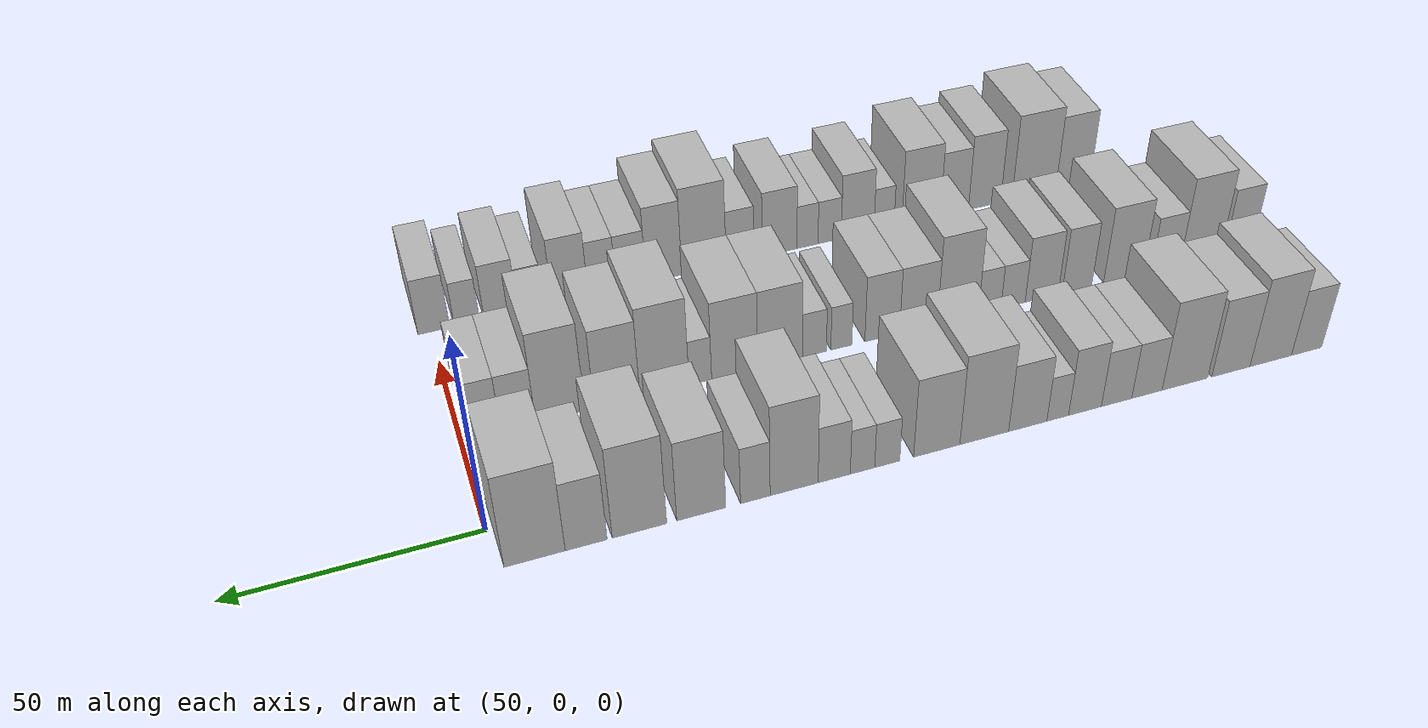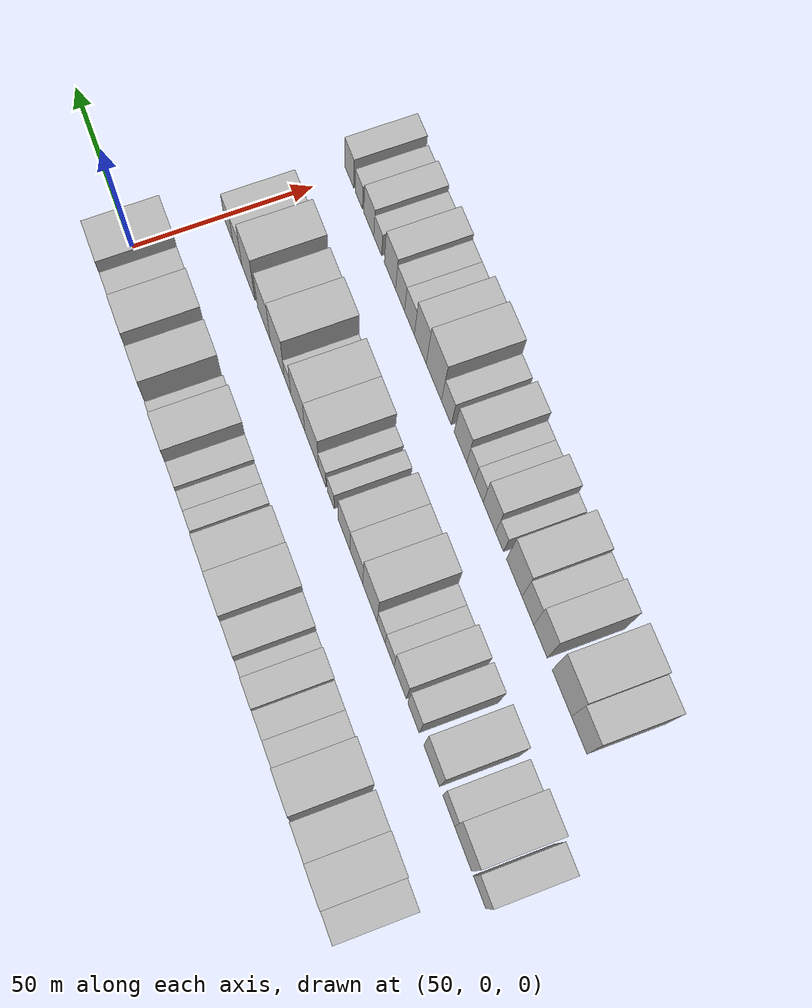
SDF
<sdf version="1.6">
 <world name="default">
  <model name="building_22">
   <static>1</static>
   <pose>50.0000 -175.5399 0 0.000000 0.000000 0.000000</pose>
   <link name="link">
    <pose>0 0 9.00 0 0 0</pose>
    <collision name="collision"><geometry><box><size>20.0000 7.5427 18.0000</size></box></geometry></collision>
    <visual name="visual">
     <cast_shadows>0</cast_shadows>
     <geometry><box><size>20.0000 7.5427 18.0000</size></box></geometry>
     <material>
      <script>
       <uri>model://HANNAS_wall/materials/scripts</uri>
       <uri>model://HANNAS_wall/materials/textures</uri>
       <name>vrc/HANNAS_wall</name>
      </script>
     </material>
    </visual>
   </link>
  </model>
  <model name="building_23">
   <static>1</static>
   <pose>50.0000 -166.6591 0 0.000000 0.000000 0.000000</pose>
   <link name="link">
    <pose>0 0 12.00 0 0 0</pose>
    <collision name="collision"><geometry><box><size>20.0000 10.2189 24.0000</size></box></geometry></collision>
    <visual name="visual">
     <cast_shadows>0</cast_shadows>
     <geometry><box><size>20.0000 10.2189 24.0000</size></box></geometry>
     <material>
      <script>
       <uri>model://HANNAS_wall/materials/scripts</uri>
       <uri>model://HANNAS_wall/materials/textures</uri>
       <name>vrc/HANNAS_wall</name>
      </script>
     </material>
    </visual>
   </link>
  </model>
  <model name="building_24">
   <static>1</static>
   <pose>50.0000 -156.9002 0 0.000000 0.000000 0.000000</pose>
   <link name="link">
    <pose>0 0 10.50 0 0 0</pose>
    <collision name="collision"><geometry><box><size>20.0000 9.2989 21.0000</size></box></geometry></collision>
    <visual name="visual">
     <cast_shadows>0</cast_shadows>
     <geometry><box><size>20.0000 9.2989 21.0000</size></box></geometry>
     <material>
      <script>
       <uri>model://HANNAS_wall/materials/scripts</uri>
       <uri>model://HANNAS_wall/materials/textures</uri>
       <name>vrc/HANNAS_wall</name>
      </script>
     </material>
    </visual>
   </link>
  </model>
  <model name="building_25">
   <static>1</static>
   <pose>50.0000 -145.7998 0 0.000000 0.000000 0.000000</pose>
   <link name="link">
    <pose>0 0 12.00 0 0 0</pose>
    <collision name="collision"><geometry><box><size>20.0000 10.9017 24.0000</size></box></geometry></collision>
    <visual name="visual">
     <cast_shadows>0</cast_shadows>
     <geometry><box><size>20.0000 10.9017 24.0000</size></box></geometry>
     <material>
      <script>
       <uri>model://HANNAS_wall/materials/scripts</uri>
       <uri>model://HANNAS_wall/materials/textures</uri>
       <name>vrc/HANNAS_wall</name>
      </script>
     </material>
    </visual>
   </link>
  </model>
  <model name="building_26">
   <static>1</static>
   <pose>50.0000 -136.7652 0 0.000000 0.000000 0.000000</pose>
   <link name="link">
    <pose>0 0 7.50 0 0 0</pose>
    <collision name="collision"><geometry><box><size>20.0000 7.1675 15.0000</size></box></geometry></collision>
    <visual name="visual">
     <cast_shadows>0</cast_shadows>
     <geometry><box><size>20.0000 7.1675 15.0000</size></box></geometry>
     <material>
      <script>
       <uri>model://HANNAS_wall/materials/scripts</uri>
       <uri>model://HANNAS_wall/materials/textures</uri>
       <name>vrc/HANNAS_wall</name>
      </script>
     </material>
    </visual>
   </link>
  </model>
  <model name="building_27">
   <static>1</static>
   <pose>50.0000 -129.6550 0 0.000000 0.000000 0.000000</pose>
   <link name="link">
    <pose>0 0 7.50 0 0 0</pose>
    <collision name="collision"><geometry><box><size>20.0000 7.0529 15.0000</size></box></geometry></collision>
    <visual name="visual">
     <cast_shadows>0</cast_shadows>
     <geometry><box><size>20.0000 7.0529 15.0000</size></box></geometry>
     <material>
      <script>
       <uri>model://HANNAS_wall/materials/scripts</uri>
       <uri>model://HANNAS_wall/materials/textures</uri>
       <name>vrc/HANNAS_wall</name>
      </script>
     </material>
    </visual>
   </link>
  </model>
  <model name="building_28">
   <static>1</static>
   <pose>50.0000 -122.3375 0 0.000000 0.000000 0.000000</pose>
   <link name="link">
    <pose>0 0 9.00 0 0 0</pose>
    <collision name="collision"><geometry><box><size>20.0000 7.5823 18.0000</size></box></geometry></collision>
    <visual name="visual">
     <cast_shadows>0</cast_shadows>
     <geometry><box><size>20.0000 7.5823 18.0000</size></box></geometry>
     <material>
      <script>
       <uri>model://HANNAS_wall/materials/scripts</uri>
       <uri>model://HANNAS_wall/materials/textures</uri>
       <name>vrc/HANNAS_wall</name>
      </script>
     </material>
    </visual>
   </link>
  </model>
  <model name="building_29">
   <static>1</static>
   <pose>50.0000 -116.0699 0 0.000000 0.000000 0.000000</pose>
   <link name="link">
    <pose>0 0 6.00 0 0 0</pose>
    <collision name="collision"><geometry><box><size>20.0000 4.9528 12.0000</size></box></geometry></collision>
    <visual name="visual">
     <cast_shadows>0</cast_shadows>
     <geometry><box><size>20.0000 4.9528 12.0000</size></box></geometry>
     <material>
      <script>
       <uri>model://HANNAS_wall/materials/scripts</uri>
       <uri>model://HANNAS_wall/materials/textures</uri>
       <name>vrc/HANNAS_wall</name>
      </script>
     </material>
    </visual>
   </link>
  </model>
  <model name="building_30">
   <static>1</static>
   <pose>50.0000 -109.2747 0 0.000000 0.000000 0.000000</pose>
   <link name="link">
    <pose>0 0 9.00 0 0 0</pose>
    <collision name="collision"><geometry><box><size>20.0000 8.6376 18.0000</size></box></geometry></collision>
    <visual name="visual">
     <cast_shadows>0</cast_shadows>
     <geometry><box><size>20.0000 8.6376 18.0000</size></box></geometry>
     <material>
      <script>
       <uri>model://HANNAS_wall/materials/scripts</uri>
       <uri>model://HANNAS_wall/materials/textures</uri>
       <name>vrc/HANNAS_wall</name>
      </script>
     </material>
    </visual>
   </link>
  </model>
  <model name="building_31">
   <static>1</static>
   <pose>50.0000 -99.5442 0 0.000000 0.000000 0.000000</pose>
   <link name="link">
    <pose>0 0 12.00 0 0 0</pose>
    <collision name="collision"><geometry><box><size>20.0000 10.8232 24.0000</size></box></geometry></collision>
    <visual name="visual">
     <cast_shadows>0</cast_shadows>
     <geometry><box><size>20.0000 10.8232 24.0000</size></box></geometry>
     <material>
      <script>
       <uri>model://HANNAS_wall/materials/scripts</uri>
       <uri>model://HANNAS_wall/materials/textures</uri>
       <name>vrc/HANNAS_wall</name>
      </script>
     </material>
    </visual>
   </link>
  </model>
  <model name="building_32">
   <static>1</static>
   <pose>50.0000 -89.0748 0 0.000000 0.000000 0.000000</pose>
   <link name="link">
    <pose>0 0 10.50 0 0 0</pose>
    <collision name="collision"><geometry><box><size>20.0000 10.1156 21.0000</size></box></geometry></collision>
    <visual name="visual">
     <cast_shadows>0</cast_shadows>
     <geometry><box><size>20.0000 10.1156 21.0000</size></box></geometry>
     <material>
      <script>
       <uri>model://HANNAS_wall/materials/scripts</uri>
       <uri>model://HANNAS_wall/materials/textures</uri>
       <name>vrc/HANNAS_wall</name>
      </script>
     </material>
    </visual>
   </link>
  </model>
  <model name="building_33">
   <static>1</static>
   <pose>50.0000 -78.3237 0 0.000000 0.000000 0.000000</pose>
   <link name="link">
    <pose>0 0 6.00 0 0 0</pose>
    <collision name="collision"><geometry><box><size>20.0000 5.3867 12.0000</size></box></geometry></collision>
    <visual name="visual">
     <cast_shadows>0</cast_shadows>
     <geometry><box><size>20.0000 5.3867 12.0000</size></box></geometry>
     <material>
      <script>
       <uri>model://HANNAS_wall/materials/scripts</uri>
       <uri>model://HANNAS_wall/materials/textures</uri>
       <name>vrc/HANNAS_wall</name>
      </script>
     </material>
    </visual>
   </link>
  </model>
  <model name="building_34">
   <static>1</static>
   <pose>50.0000 -73.0354 0 0.000000 0.000000 0.000000</pose>
   <link name="link">
    <pose>0 0 6.00 0 0 0</pose>
    <collision name="collision"><geometry><box><size>20.0000 5.1898 12.0000</size></box></geometry></collision>
    <visual name="visual">
     <cast_shadows>0</cast_shadows>
     <geometry><box><size>20.0000 5.1898 12.0000</size></box></geometry>
     <material>
      <script>
       <uri>model://HANNAS_wall/materials/scripts</uri>
       <uri>model://HANNAS_wall/materials/textures</uri>
       <name>vrc/HANNAS_wall</name>
      </script>
     </material>
    </visual>
   </link>
  </model>
  <model name="building_35">
   <static>1</static>
   <pose>50.0000 -67.0628 0 0.000000 0.000000 0.000000</pose>
   <link name="link">
    <pose>0 0 7.50 0 0 0</pose>
    <collision name="collision"><geometry><box><size>20.0000 6.7553 15.0000</size></box></geometry></collision>
    <visual name="visual">
     <cast_shadows>0</cast_shadows>
     <geometry><box><size>20.0000 6.7553 15.0000</size></box></geometry>
     <material>
      <script>
       <uri>model://HANNAS_wall/materials/scripts</uri>
       <uri>model://HANNAS_wall/materials/textures</uri>
       <name>vrc/HANNAS_wall</name>
      </script>
     </material>
    </visual>
   </link>
  </model>
  <model name="building_36">
   <static>1</static>
   <pose>50.0000 -58.6973 0 0.000000 0.000000 0.000000</pose>
   <link name="link">
    <pose>0 0 12.00 0 0 0</pose>
    <collision name="collision"><geometry><box><size>20.0000 9.9757 24.0000</size></box></geometry></collision>
    <visual name="visual">
     <cast_shadows>0</cast_shadows>
     <geometry><box><size>20.0000 9.9757 24.0000</size></box></geometry>
     <material>
      <script>
       <uri>model://HANNAS_wall/materials/scripts</uri>
       <uri>model://HANNAS_wall/materials/textures</uri>
       <name>vrc/HANNAS_wall</name>
      </script>
     </material>
    </visual>
   </link>
  </model>
  <model name="building_37">
   <static>1</static>
   <pose>50.0000 -50.6747 0 0.000000 0.000000 0.000000</pose>
   <link name="link">
    <pose>0 0 7.50 0 0 0</pose>
    <collision name="collision"><geometry><box><size>20.0000 6.0696 15.0000</size></box></geometry></collision>
    <visual name="visual">
     <cast_shadows>0</cast_shadows>
     <geometry><box><size>20.0000 6.0696 15.0000</size></box></geometry>
     <material>
      <script>
       <uri>model://HANNAS_wall/materials/scripts</uri>
       <uri>model://HANNAS_wall/materials/textures</uri>
       <name>vrc/HANNAS_wall</name>
      </script>
     </material>
    </visual>
   </link>
  </model>
  <model name="building_38">
   <static>1</static>
   <pose>50.0000 -39.7006 0 0.000000 0.000000 0.000000</pose>
   <link name="link">
    <pose>0 0 10.50 0 0 0</pose>
    <collision name="collision"><geometry><box><size>20.0000 9.8786 21.0000</size></box></geometry></collision>
    <visual name="visual">
     <cast_shadows>0</cast_shadows>
     <geometry><box><size>20.0000 9.8786 21.0000</size></box></geometry>
     <material>
      <script>
       <uri>model://HANNAS_wall/materials/scripts</uri>
       <uri>model://HANNAS_wall/materials/textures</uri>
       <name>vrc/HANNAS_wall</name>
      </script>
     </material>
    </visual>
   </link>
  </model>
  <model name="building_39">
   <static>1</static>
   <pose>50.0000 -27.3961 0 0.000000 0.000000 0.000000</pose>
   <link name="link">
    <pose>0 0 12.00 0 0 0</pose>
    <collision name="collision"><geometry><box><size>20.0000 10.7304 24.0000</size></box></geometry></collision>
    <visual name="visual">
     <cast_shadows>0</cast_shadows>
     <geometry><box><size>20.0000 10.7304 24.0000</size></box></geometry>
     <material>
      <script>
       <uri>model://HANNAS_wall/materials/scripts</uri>
       <uri>model://HANNAS_wall/materials/textures</uri>
       <name>vrc/HANNAS_wall</name>
      </script>
     </material>
    </visual>
   </link>
  </model>
  <model name="building_40">
   <static>1</static>
   <pose>50.0000 -16.9839 0 0.000000 0.000000 0.000000</pose>
   <link name="link">
    <pose>0 0 9.00 0 0 0</pose>
    <collision name="collision"><geometry><box><size>20.0000 8.0940 18.0000</size></box></geometry></collision>
    <visual name="visual">
     <cast_shadows>0</cast_shadows>
     <geometry><box><size>20.0000 8.0940 18.0000</size></box></geometry>
     <material>
      <script>
       <uri>model://HANNAS_wall/materials/scripts</uri>
       <uri>model://HANNAS_wall/materials/textures</uri>
       <name>vrc/HANNAS_wall</name>
      </script>
     </material>
    </visual>
   </link>
  </model>
  <model name="building_41">
   <static>1</static>
   <pose>50.0000 -7.0930 0 0.000000 0.000000 0.000000</pose>
   <link name="link">
    <pose>0 0 12.00 0 0 0</pose>
    <collision name="collision"><geometry><box><size>20.0000 11.6879 24.0000</size></box></geometry></collision>
    <visual name="visual">
     <cast_shadows>0</cast_shadows>
     <geometry><box><size>20.0000 11.6879 24.0000</size></box></geometry>
     <material>
      <script>
       <uri>model://HANNAS_wall/materials/scripts</uri>
       <uri>model://HANNAS_wall/materials/textures</uri>
       <name>vrc/HANNAS_wall</name>
      </script>
     </material>
    </visual>
   </link>
  </model>
  <model name="building_104">
   <static>1</static>
   <pose>85.0000 -180.5309 0 0.000000 0.000000 0.000000</pose>
   <link name="link">
    <pose>0 0 9.00 0 0 0</pose>
    <collision name="collision"><geometry><box><size>20.0000 7.5802 18.0000</size></box></geometry></collision>
    <visual name="visual">
     <cast_shadows>0</cast_shadows>
     <geometry><box><size>20.0000 7.5802 18.0000</size></box></geometry>
     <material>
      <script>
       <uri>model://HANNAS_wall/materials/scripts</uri>
       <uri>model://HANNAS_wall/materials/textures</uri>
       <name>vrc/HANNAS_wall</name>
      </script>
     </material>
    </visual>
   </link>
  </model>
  <model name="building_105">
   <static>1</static>
   <pose>85.0000 -170.4434 0 0.000000 0.000000 0.000000</pose>
   <link name="link">
    <pose>0 0 12.00 0 0 0</pose>
    <collision name="collision"><geometry><box><size>20.0000 10.5948 24.0000</size></box></geometry></collision>
    <visual name="visual">
     <cast_shadows>0</cast_shadows>
     <geometry><box><size>20.0000 10.5948 24.0000</size></box></geometry>
     <material>
      <script>
       <uri>model://HANNAS_wall/materials/scripts</uri>
       <uri>model://HANNAS_wall/materials/textures</uri>
       <name>vrc/HANNAS_wall</name>
      </script>
     </material>
    </visual>
   </link>
  </model>
  <model name="building_106">
   <static>1</static>
   <pose>85.0000 -161.4108 0 0.000000 0.000000 0.000000</pose>
   <link name="link">
    <pose>0 0 7.50 0 0 0</pose>
    <collision name="collision"><geometry><box><size>20.0000 7.4703 15.0000</size></box></geometry></collision>
    <visual name="visual">
     <cast_shadows>0</cast_shadows>
     <geometry><box><size>20.0000 7.4703 15.0000</size></box></geometry>
     <material>
      <script>
       <uri>model://HANNAS_wall/materials/scripts</uri>
       <uri>model://HANNAS_wall/materials/textures</uri>
       <name>vrc/HANNAS_wall</name>
      </script>
     </material>
    </visual>
   </link>
  </model>
  <model name="building_107">
   <static>1</static>
   <pose>85.0000 -150.6119 0 0.000000 0.000000 0.000000</pose>
   <link name="link">
    <pose>0 0 10.50 0 0 0</pose>
    <collision name="collision"><geometry><box><size>20.0000 10.1276 21.0000</size></box></geometry></collision>
    <visual name="visual">
     <cast_shadows>0</cast_shadows>
     <geometry><box><size>20.0000 10.1276 21.0000</size></box></geometry>
     <material>
      <script>
       <uri>model://HANNAS_wall/materials/scripts</uri>
       <uri>model://HANNAS_wall/materials/textures</uri>
       <name>vrc/HANNAS_wall</name>
      </script>
     </material>
    </visual>
   </link>
  </model>
  <model name="building_108">
   <static>1</static>
   <pose>85.0000 -138.8390 0 0.000000 0.000000 0.000000</pose>
   <link name="link">
    <pose>0 0 9.00 0 0 0</pose>
    <collision name="collision"><geometry><box><size>20.0000 7.4181 18.0000</size></box></geometry></collision>
    <visual name="visual">
     <cast_shadows>0</cast_shadows>
     <geometry><box><size>20.0000 7.4181 18.0000</size></box></geometry>
     <material>
      <script>
       <uri>model://HANNAS_wall/materials/scripts</uri>
       <uri>model://HANNAS_wall/materials/textures</uri>
       <name>vrc/HANNAS_wall</name>
      </script>
     </material>
    </visual>
   </link>
  </model>
  <model name="building_109">
   <static>1</static>
   <pose>85.0000 -130.0337 0 0.000000 0.000000 0.000000</pose>
   <link name="link">
    <pose>0 0 9.00 0 0 0</pose>
    <collision name="collision"><geometry><box><size>20.0000 8.1925 18.0000</size></box></geometry></collision>
    <visual name="visual">
     <cast_shadows>0</cast_shadows>
     <geometry><box><size>20.0000 8.1925 18.0000</size></box></geometry>
     <material>
      <script>
       <uri>model://HANNAS_wall/materials/scripts</uri>
       <uri>model://HANNAS_wall/materials/textures</uri>
       <name>vrc/HANNAS_wall</name>
      </script>
     </material>
    </visual>
   </link>
  </model>
  <model name="building_110">
   <static>1</static>
   <pose>85.0000 -122.9651 0 0.000000 0.000000 0.000000</pose>
   <link name="link">
    <pose>0 0 6.00 0 0 0</pose>
    <collision name="collision"><geometry><box><size>20.0000 5.9447 12.0000</size></box></geometry></collision>
    <visual name="visual">
     <cast_shadows>0</cast_shadows>
     <geometry><box><size>20.0000 5.9447 12.0000</size></box></geometry>
     <material>
      <script>
       <uri>model://HANNAS_wall/materials/scripts</uri>
       <uri>model://HANNAS_wall/materials/textures</uri>
       <name>vrc/HANNAS_wall</name>
      </script>
     </material>
    </visual>
   </link>
  </model>
  <model name="building_111">
   <static>1</static>
   <pose>85.0000 -117.2494 0 0.000000 0.000000 0.000000</pose>
   <link name="link">
    <pose>0 0 6.00 0 0 0</pose>
    <collision name="collision"><geometry><box><size>20.0000 5.4867 12.0000</size></box></geometry></collision>
    <visual name="visual">
     <cast_shadows>0</cast_shadows>
     <geometry><box><size>20.0000 5.4867 12.0000</size></box></geometry>
     <material>
      <script>
       <uri>model://HANNAS_wall/materials/scripts</uri>
       <uri>model://HANNAS_wall/materials/textures</uri>
       <name>vrc/HANNAS_wall</name>
      </script>
     </material>
    </visual>
   </link>
  </model>
  <model name="building_112">
   <static>1</static>
   <pose>85.0000 -109.5679 0 0.000000 0.000000 0.000000</pose>
   <link name="link">
    <pose>0 0 12.00 0 0 0</pose>
    <collision name="collision"><geometry><box><size>20.0000 9.8763 24.0000</size></box></geometry></collision>
    <visual name="visual">
     <cast_shadows>0</cast_shadows>
     <geometry><box><size>20.0000 9.8763 24.0000</size></box></geometry>
     <material>
      <script>
       <uri>model://HANNAS_wall/materials/scripts</uri>
       <uri>model://HANNAS_wall/materials/textures</uri>
       <name>vrc/HANNAS_wall</name>
      </script>
     </material>
    </visual>
   </link>
  </model>
  <model name="building_113">
   <static>1</static>
   <pose>85.0000 -100.1705 0 0.000000 0.000000 0.000000</pose>
   <link name="link">
    <pose>0 0 9.00 0 0 0</pose>
    <collision name="collision"><geometry><box><size>20.0000 8.9186 18.0000</size></box></geometry></collision>
    <visual name="visual">
     <cast_shadows>0</cast_shadows>
     <geometry><box><size>20.0000 8.9186 18.0000</size></box></geometry>
     <material>
      <script>
       <uri>model://HANNAS_wall/materials/scripts</uri>
       <uri>model://HANNAS_wall/materials/textures</uri>
       <name>vrc/HANNAS_wall</name>
      </script>
     </material>
    </visual>
   </link>
  </model>
  <model name="building_114">
   <static>1</static>
   <pose>85.0000 -91.6580 0 0.000000 0.000000 0.000000</pose>
   <link name="link">
    <pose>0 0 9.00 0 0 0</pose>
    <collision name="collision"><geometry><box><size>20.0000 8.1062 18.0000</size></box></geometry></collision>
    <visual name="visual">
     <cast_shadows>0</cast_shadows>
     <geometry><box><size>20.0000 8.1062 18.0000</size></box></geometry>
     <material>
      <script>
       <uri>model://HANNAS_wall/materials/scripts</uri>
       <uri>model://HANNAS_wall/materials/textures</uri>
       <name>vrc/HANNAS_wall</name>
      </script>
     </material>
    </visual>
   </link>
  </model>
  <model name="building_115">
   <static>1</static>
   <pose>85.0000 -82.1719 0 0.000000 0.000000 0.000000</pose>
   <link name="link">
    <pose>0 0 6.00 0 0 0</pose>
    <collision name="collision"><geometry><box><size>20.0000 4.8661 12.0000</size></box></geometry></collision>
    <visual name="visual">
     <cast_shadows>0</cast_shadows>
     <geometry><box><size>20.0000 4.8661 12.0000</size></box></geometry>
     <material>
      <script>
       <uri>model://HANNAS_wall/materials/scripts</uri>
       <uri>model://HANNAS_wall/materials/textures</uri>
       <name>vrc/HANNAS_wall</name>
      </script>
     </material>
    </visual>
   </link>
  </model>
  <model name="building_116">
   <static>1</static>
   <pose>85.0000 -76.0202 0 0.000000 0.000000 0.000000</pose>
   <link name="link">
    <pose>0 0 6.00 0 0 0</pose>
    <collision name="collision"><geometry><box><size>20.0000 5.4373 12.0000</size></box></geometry></collision>
    <visual name="visual">
     <cast_shadows>0</cast_shadows>
     <geometry><box><size>20.0000 5.4373 12.0000</size></box></geometry>
     <material>
      <script>
       <uri>model://HANNAS_wall/materials/scripts</uri>
       <uri>model://HANNAS_wall/materials/textures</uri>
       <name>vrc/HANNAS_wall</name>
      </script>
     </material>
    </visual>
   </link>
  </model>
  <model name="building_117">
   <static>1</static>
   <pose>85.0000 -68.2478 0 0.000000 0.000000 0.000000</pose>
   <link name="link">
    <pose>0 0 10.50 0 0 0</pose>
    <collision name="collision"><geometry><box><size>20.0000 10.1073 21.0000</size></box></geometry></collision>
    <visual name="visual">
     <cast_shadows>0</cast_shadows>
     <geometry><box><size>20.0000 10.1073 21.0000</size></box></geometry>
     <material>
      <script>
       <uri>model://HANNAS_wall/materials/scripts</uri>
       <uri>model://HANNAS_wall/materials/textures</uri>
       <name>vrc/HANNAS_wall</name>
      </script>
     </material>
    </visual>
   </link>
  </model>
  <model name="building_118">
   <static>1</static>
   <pose>85.0000 -58.0601 0 0.000000 0.000000 0.000000</pose>
   <link name="link">
    <pose>0 0 10.50 0 0 0</pose>
    <collision name="collision"><geometry><box><size>20.0000 10.2682 21.0000</size></box></geometry></collision>
    <visual name="visual">
     <cast_shadows>0</cast_shadows>
     <geometry><box><size>20.0000 10.2682 21.0000</size></box></geometry>
     <material>
      <script>
       <uri>model://HANNAS_wall/materials/scripts</uri>
       <uri>model://HANNAS_wall/materials/textures</uri>
       <name>vrc/HANNAS_wall</name>
      </script>
     </material>
    </visual>
   </link>
  </model>
  <model name="building_119">
   <static>1</static>
   <pose>85.0000 -50.4531 0 0.000000 0.000000 0.000000</pose>
   <link name="link">
    <pose>0 0 6.00 0 0 0</pose>
    <collision name="collision"><geometry><box><size>20.0000 4.9458 12.0000</size></box></geometry></collision>
    <visual name="visual">
     <cast_shadows>0</cast_shadows>
     <geometry><box><size>20.0000 4.9458 12.0000</size></box></geometry>
     <material>
      <script>
       <uri>model://HANNAS_wall/materials/scripts</uri>
       <uri>model://HANNAS_wall/materials/textures</uri>
       <name>vrc/HANNAS_wall</name>
      </script>
     </material>
    </visual>
   </link>
  </model>
  <model name="building_120">
   <static>1</static>
   <pose>85.0000 -42.6387 0 0.000000 0.000000 0.000000</pose>
   <link name="link">
    <pose>0 0 12.00 0 0 0</pose>
    <collision name="collision"><geometry><box><size>20.0000 10.6828 24.0000</size></box></geometry></collision>
    <visual name="visual">
     <cast_shadows>0</cast_shadows>
     <geometry><box><size>20.0000 10.6828 24.0000</size></box></geometry>
     <material>
      <script>
       <uri>model://HANNAS_wall/materials/scripts</uri>
       <uri>model://HANNAS_wall/materials/textures</uri>
       <name>vrc/HANNAS_wall</name>
      </script>
     </material>
    </visual>
   </link>
  </model>
  <model name="building_121">
   <static>1</static>
   <pose>85.0000 -32.4315 0 0.000000 0.000000 0.000000</pose>
   <link name="link">
    <pose>0 0 10.50 0 0 0</pose>
    <collision name="collision"><geometry><box><size>20.0000 9.7316 21.0000</size></box></geometry></collision>
    <visual name="visual">
     <cast_shadows>0</cast_shadows>
     <geometry><box><size>20.0000 9.7316 21.0000</size></box></geometry>
     <material>
      <script>
       <uri>model://HANNAS_wall/materials/scripts</uri>
       <uri>model://HANNAS_wall/materials/textures</uri>
       <name>vrc/HANNAS_wall</name>
      </script>
     </material>
    </visual>
   </link>
  </model>
  <model name="building_122">
   <static>1</static>
   <pose>85.0000 -20.4180 0 0.000000 0.000000 0.000000</pose>
   <link name="link">
    <pose>0 0 12.00 0 0 0</pose>
    <collision name="collision"><geometry><box><size>20.0000 10.2954 24.0000</size></box></geometry></collision>
    <visual name="visual">
     <cast_shadows>0</cast_shadows>
     <geometry><box><size>20.0000 10.2954 24.0000</size></box></geometry>
     <material>
      <script>
       <uri>model://HANNAS_wall/materials/scripts</uri>
       <uri>model://HANNAS_wall/materials/textures</uri>
       <name>vrc/HANNAS_wall</name>
      </script>
     </material>
    </visual>
   </link>
  </model>
  <model name="building_123">
   <static>1</static>
   <pose>85.0000 -11.6659 0 0.000000 0.000000 0.000000</pose>
   <link name="link">
    <pose>0 0 7.50 0 0 0</pose>
    <collision name="collision"><geometry><box><size>20.0000 7.2089 15.0000</size></box></geometry></collision>
    <visual name="visual">
     <cast_shadows>0</cast_shadows>
     <geometry><box><size>20.0000 7.2089 15.0000</size></box></geometry>
     <material>
      <script>
       <uri>model://HANNAS_wall/materials/scripts</uri>
       <uri>model://HANNAS_wall/materials/textures</uri>
       <name>vrc/HANNAS_wall</name>
      </script>
     </material>
    </visual>
   </link>
  </model>
  <model name="building_124">
   <static>1</static>
   <pose>85.0000 -4.7768 0 0.000000 0.000000 0.000000</pose>
   <link name="link">
    <pose>0 0 7.50 0 0 0</pose>
    <collision name="collision"><geometry><box><size>20.0000 6.5692 15.0000</size></box></geometry></collision>
    <visual name="visual">
     <cast_shadows>0</cast_shadows>
     <geometry><box><size>20.0000 6.5692 15.0000</size></box></geometry>
     <material>
      <script>
       <uri>model://HANNAS_wall/materials/scripts</uri>
       <uri>model://HANNAS_wall/materials/textures</uri>
       <name>vrc/HANNAS_wall</name>
      </script>
     </material>
    </visual>
   </link>
  </model>
  <model name="building_186">
   <static>1</static>
   <pose>120.0000 -156.0655 0 0.000000 0.000000 0.000000</pose>
   <link name="link">
    <pose>0 0 10.50 0 0 0</pose>
    <collision name="collision"><geometry><box><size>20.0000 9.2628 21.0000</size></box></geometry></collision>
    <visual name="visual">
     <cast_shadows>0</cast_shadows>
     <geometry><box><size>20.0000 9.2628 21.0000</size></box></geometry>
     <material>
      <script>
       <uri>model://HANNAS_wall/materials/scripts</uri>
       <uri>model://HANNAS_wall/materials/textures</uri>
       <name>vrc/HANNAS_wall</name>
      </script>
     </material>
    </visual>
   </link>
  </model>
  <model name="building_187">
   <static>1</static>
   <pose>120.0000 -145.5652 0 0.000000 0.000000 0.000000</pose>
   <link name="link">
    <pose>0 0 12.00 0 0 0</pose>
    <collision name="collision"><geometry><box><size>20.0000 11.7379 24.0000</size></box></geometry></collision>
    <visual name="visual">
     <cast_shadows>0</cast_shadows>
     <geometry><box><size>20.0000 11.7379 24.0000</size></box></geometry>
     <material>
      <script>
       <uri>model://HANNAS_wall/materials/scripts</uri>
       <uri>model://HANNAS_wall/materials/textures</uri>
       <name>vrc/HANNAS_wall</name>
      </script>
     </material>
    </visual>
   </link>
  </model>
  <model name="building_188">
   <static>1</static>
   <pose>120.0000 -132.4671 0 0.000000 0.000000 0.000000</pose>
   <link name="link">
    <pose>0 0 10.50 0 0 0</pose>
    <collision name="collision"><geometry><box><size>20.0000 8.4583 21.0000</size></box></geometry></collision>
    <visual name="visual">
     <cast_shadows>0</cast_shadows>
     <geometry><box><size>20.0000 8.4583 21.0000</size></box></geometry>
     <material>
      <script>
       <uri>model://HANNAS_wall/materials/scripts</uri>
       <uri>model://HANNAS_wall/materials/textures</uri>
       <name>vrc/HANNAS_wall</name>
      </script>
     </material>
    </visual>
   </link>
  </model>
  <model name="building_189">
   <static>1</static>
   <pose>120.0000 -124.5732 0 0.000000 0.000000 0.000000</pose>
   <link name="link">
    <pose>0 0 9.00 0 0 0</pose>
    <collision name="collision"><geometry><box><size>20.0000 7.3294 18.0000</size></box></geometry></collision>
    <visual name="visual">
     <cast_shadows>0</cast_shadows>
     <geometry><box><size>20.0000 7.3294 18.0000</size></box></geometry>
     <material>
      <script>
       <uri>model://HANNAS_wall/materials/scripts</uri>
       <uri>model://HANNAS_wall/materials/textures</uri>
       <name>vrc/HANNAS_wall</name>
      </script>
     </material>
    </visual>
   </link>
  </model>
  <model name="building_190">
   <static>1</static>
   <pose>120.0000 -115.9672 0 0.000000 0.000000 0.000000</pose>
   <link name="link">
    <pose>0 0 10.50 0 0 0</pose>
    <collision name="collision"><geometry><box><size>20.0000 9.8826 21.0000</size></box></geometry></collision>
    <visual name="visual">
     <cast_shadows>0</cast_shadows>
     <geometry><box><size>20.0000 9.8826 21.0000</size></box></geometry>
     <material>
      <script>
       <uri>model://HANNAS_wall/materials/scripts</uri>
       <uri>model://HANNAS_wall/materials/textures</uri>
       <name>vrc/HANNAS_wall</name>
      </script>
     </material>
    </visual>
   </link>
  </model>
  <model name="building_191">
   <static>1</static>
   <pose>120.0000 -106.4853 0 0.000000 0.000000 0.000000</pose>
   <link name="link">
    <pose>0 0 6.00 0 0 0</pose>
    <collision name="collision"><geometry><box><size>20.0000 5.0813 12.0000</size></box></geometry></collision>
    <visual name="visual">
     <cast_shadows>0</cast_shadows>
     <geometry><box><size>20.0000 5.0813 12.0000</size></box></geometry>
     <material>
      <script>
       <uri>model://HANNAS_wall/materials/scripts</uri>
       <uri>model://HANNAS_wall/materials/textures</uri>
       <name>vrc/HANNAS_wall</name>
      </script>
     </material>
    </visual>
   </link>
  </model>
  <model name="building_192">
   <static>1</static>
   <pose>120.0000 -99.8449 0 0.000000 0.000000 0.000000</pose>
   <link name="link">
    <pose>0 0 9.00 0 0 0</pose>
    <collision name="collision"><geometry><box><size>20.0000 8.1994 18.0000</size></box></geometry></collision>
    <visual name="visual">
     <cast_shadows>0</cast_shadows>
     <geometry><box><size>20.0000 8.1994 18.0000</size></box></geometry>
     <material>
      <script>
       <uri>model://HANNAS_wall/materials/scripts</uri>
       <uri>model://HANNAS_wall/materials/textures</uri>
       <name>vrc/HANNAS_wall</name>
      </script>
     </material>
    </visual>
   </link>
  </model>
  <model name="building_193">
   <static>1</static>
   <pose>120.0000 -92.8653 0 0.000000 0.000000 0.000000</pose>
   <link name="link">
    <pose>0 0 6.00 0 0 0</pose>
    <collision name="collision"><geometry><box><size>20.0000 5.7599 12.0000</size></box></geometry></collision>
    <visual name="visual">
     <cast_shadows>0</cast_shadows>
     <geometry><box><size>20.0000 5.7599 12.0000</size></box></geometry>
     <material>
      <script>
       <uri>model://HANNAS_wall/materials/scripts</uri>
       <uri>model://HANNAS_wall/materials/textures</uri>
       <name>vrc/HANNAS_wall</name>
      </script>
     </material>
    </visual>
   </link>
  </model>
  <model name="building_194">
   <static>1</static>
   <pose>120.0000 -87.3881 0 0.000000 0.000000 0.000000</pose>
   <link name="link">
    <pose>0 0 6.00 0 0 0</pose>
    <collision name="collision"><geometry><box><size>20.0000 5.1944 12.0000</size></box></geometry></collision>
    <visual name="visual">
     <cast_shadows>0</cast_shadows>
     <geometry><box><size>20.0000 5.1944 12.0000</size></box></geometry>
     <material>
      <script>
       <uri>model://HANNAS_wall/materials/scripts</uri>
       <uri>model://HANNAS_wall/materials/textures</uri>
       <name>vrc/HANNAS_wall</name>
      </script>
     </material>
    </visual>
   </link>
  </model>
  <model name="building_195">
   <static>1</static>
   <pose>120.0000 -80.5467 0 0.000000 0.000000 0.000000</pose>
   <link name="link">
    <pose>0 0 9.00 0 0 0</pose>
    <collision name="collision"><geometry><box><size>20.0000 8.4883 18.0000</size></box></geometry></collision>
    <visual name="visual">
     <cast_shadows>0</cast_shadows>
     <geometry><box><size>20.0000 8.4883 18.0000</size></box></geometry>
     <material>
      <script>
       <uri>model://HANNAS_wall/materials/scripts</uri>
       <uri>model://HANNAS_wall/materials/textures</uri>
       <name>vrc/HANNAS_wall</name>
      </script>
     </material>
    </visual>
   </link>
  </model>
  <model name="building_196">
   <static>1</static>
   <pose>120.0000 -70.9347 0 0.000000 0.000000 0.000000</pose>
   <link name="link">
    <pose>0 0 7.50 0 0 0</pose>
    <collision name="collision"><geometry><box><size>20.0000 6.7357 15.0000</size></box></geometry></collision>
    <visual name="visual">
     <cast_shadows>0</cast_shadows>
     <geometry><box><size>20.0000 6.7357 15.0000</size></box></geometry>
     <material>
      <script>
       <uri>model://HANNAS_wall/materials/scripts</uri>
       <uri>model://HANNAS_wall/materials/textures</uri>
       <name>vrc/HANNAS_wall</name>
      </script>
     </material>
    </visual>
   </link>
  </model>
  <model name="building_197">
   <static>1</static>
   <pose>120.0000 -62.2794 0 0.000000 0.000000 0.000000</pose>
   <link name="link">
    <pose>0 0 12.00 0 0 0</pose>
    <collision name="collision"><geometry><box><size>20.0000 10.5749 24.0000</size></box></geometry></collision>
    <visual name="visual">
     <cast_shadows>0</cast_shadows>
     <geometry><box><size>20.0000 10.5749 24.0000</size></box></geometry>
     <material>
      <script>
       <uri>model://HANNAS_wall/materials/scripts</uri>
       <uri>model://HANNAS_wall/materials/textures</uri>
       <name>vrc/HANNAS_wall</name>
      </script>
     </material>
    </visual>
   </link>
  </model>
  <model name="building_198">
   <static>1</static>
   <pose>120.0000 -52.7819 0 0.000000 0.000000 0.000000</pose>
   <link name="link">
    <pose>0 0 10.50 0 0 0</pose>
    <collision name="collision"><geometry><box><size>20.0000 8.4201 21.0000</size></box></geometry></collision>
    <visual name="visual">
     <cast_shadows>0</cast_shadows>
     <geometry><box><size>20.0000 8.4201 21.0000</size></box></geometry>
     <material>
      <script>
       <uri>model://HANNAS_wall/materials/scripts</uri>
       <uri>model://HANNAS_wall/materials/textures</uri>
       <name>vrc/HANNAS_wall</name>
      </script>
     </material>
    </visual>
   </link>
  </model>
  <model name="building_199">
   <static>1</static>
   <pose>120.0000 -45.0953 0 0.000000 0.000000 0.000000</pose>
   <link name="link">
    <pose>0 0 7.50 0 0 0</pose>
    <collision name="collision"><geometry><box><size>20.0000 6.9532 15.0000</size></box></geometry></collision>
    <visual name="visual">
     <cast_shadows>0</cast_shadows>
     <geometry><box><size>20.0000 6.9532 15.0000</size></box></geometry>
     <material>
      <script>
       <uri>model://HANNAS_wall/materials/scripts</uri>
       <uri>model://HANNAS_wall/materials/textures</uri>
       <name>vrc/HANNAS_wall</name>
      </script>
     </material>
    </visual>
   </link>
  </model>
  <model name="building_200">
   <static>1</static>
   <pose>120.0000 -38.4064 0 0.000000 0.000000 0.000000</pose>
   <link name="link">
    <pose>0 0 7.50 0 0 0</pose>
    <collision name="collision"><geometry><box><size>20.0000 6.4245 15.0000</size></box></geometry></collision>
    <visual name="visual">
     <cast_shadows>0</cast_shadows>
     <geometry><box><size>20.0000 6.4245 15.0000</size></box></geometry>
     <material>
      <script>
       <uri>model://HANNAS_wall/materials/scripts</uri>
       <uri>model://HANNAS_wall/materials/textures</uri>
       <name>vrc/HANNAS_wall</name>
      </script>
     </material>
    </visual>
   </link>
  </model>
  <model name="building_201">
   <static>1</static>
   <pose>120.0000 -31.0933 0 0.000000 0.000000 0.000000</pose>
   <link name="link">
    <pose>0 0 9.00 0 0 0</pose>
    <collision name="collision"><geometry><box><size>20.0000 8.2018 18.0000</size></box></geometry></collision>
    <visual name="visual">
     <cast_shadows>0</cast_shadows>
     <geometry><box><size>20.0000 8.2018 18.0000</size></box></geometry>
     <material>
      <script>
       <uri>model://HANNAS_wall/materials/scripts</uri>
       <uri>model://HANNAS_wall/materials/textures</uri>
       <name>vrc/HANNAS_wall</name>
      </script>
     </material>
    </visual>
   </link>
  </model>
  <model name="building_202">
   <static>1</static>
   <pose>120.0000 -22.0968 0 0.000000 0.000000 0.000000</pose>
   <link name="link">
    <pose>0 0 6.00 0 0 0</pose>
    <collision name="collision"><geometry><box><size>20.0000 5.7912 12.0000</size></box></geometry></collision>
    <visual name="visual">
     <cast_shadows>0</cast_shadows>
     <geometry><box><size>20.0000 5.7912 12.0000</size></box></geometry>
     <material>
      <script>
       <uri>model://HANNAS_wall/materials/scripts</uri>
       <uri>model://HANNAS_wall/materials/textures</uri>
       <name>vrc/HANNAS_wall</name>
      </script>
     </material>
    </visual>
   </link>
  </model>
  <model name="building_203">
   <static>1</static>
   <pose>120.0000 -15.4723 0 0.000000 0.000000 0.000000</pose>
   <link name="link">
    <pose>0 0 7.50 0 0 0</pose>
    <collision name="collision"><geometry><box><size>20.0000 7.4577 15.0000</size></box></geometry></collision>
    <visual name="visual">
     <cast_shadows>0</cast_shadows>
     <geometry><box><size>20.0000 7.4577 15.0000</size></box></geometry>
     <material>
      <script>
       <uri>model://HANNAS_wall/materials/scripts</uri>
       <uri>model://HANNAS_wall/materials/textures</uri>
       <name>vrc/HANNAS_wall</name>
      </script>
     </material>
    </visual>
   </link>
  </model>
  <model name="building_204">
   <static>1</static>
   <pose>120.0000 -7.9612 0 0.000000 0.000000 0.000000</pose>
   <link name="link">
    <pose>0 0 6.00 0 0 0</pose>
    <collision name="collision"><geometry><box><size>20.0000 5.5646 12.0000</size></box></geometry></collision>
    <visual name="visual">
     <cast_shadows>0</cast_shadows>
     <geometry><box><size>20.0000 5.5646 12.0000</size></box></geometry>
     <material>
      <script>
       <uri>model://HANNAS_wall/materials/scripts</uri>
       <uri>model://HANNAS_wall/materials/textures</uri>
       <name>vrc/HANNAS_wall</name>
      </script>
     </material>
    </visual>
   </link>
  </model>
  <model name="building_205">
   <static>1</static>
   <pose>120.0000 -0.7055 0 0.000000 0.000000 0.000000</pose>
   <link name="link">
    <pose>0 0 7.50 0 0 0</pose>
    <collision name="collision"><geometry><box><size>20.0000 6.9468 15.0000</size></box></geometry></collision>
    <visual name="visual">
     <cast_shadows>0</cast_shadows>
     <geometry><box><size>20.0000 6.9468 15.0000</size></box></geometry>
     <material>
      <script>
       <uri>model://HANNAS_wall/materials/scripts</uri>
       <uri>model://HANNAS_wall/materials/textures</uri>
       <name>vrc/HANNAS_wall</name>
      </script>
     </material>
    </visual>
   </link>
  </model>
 </world>
</sdf>
